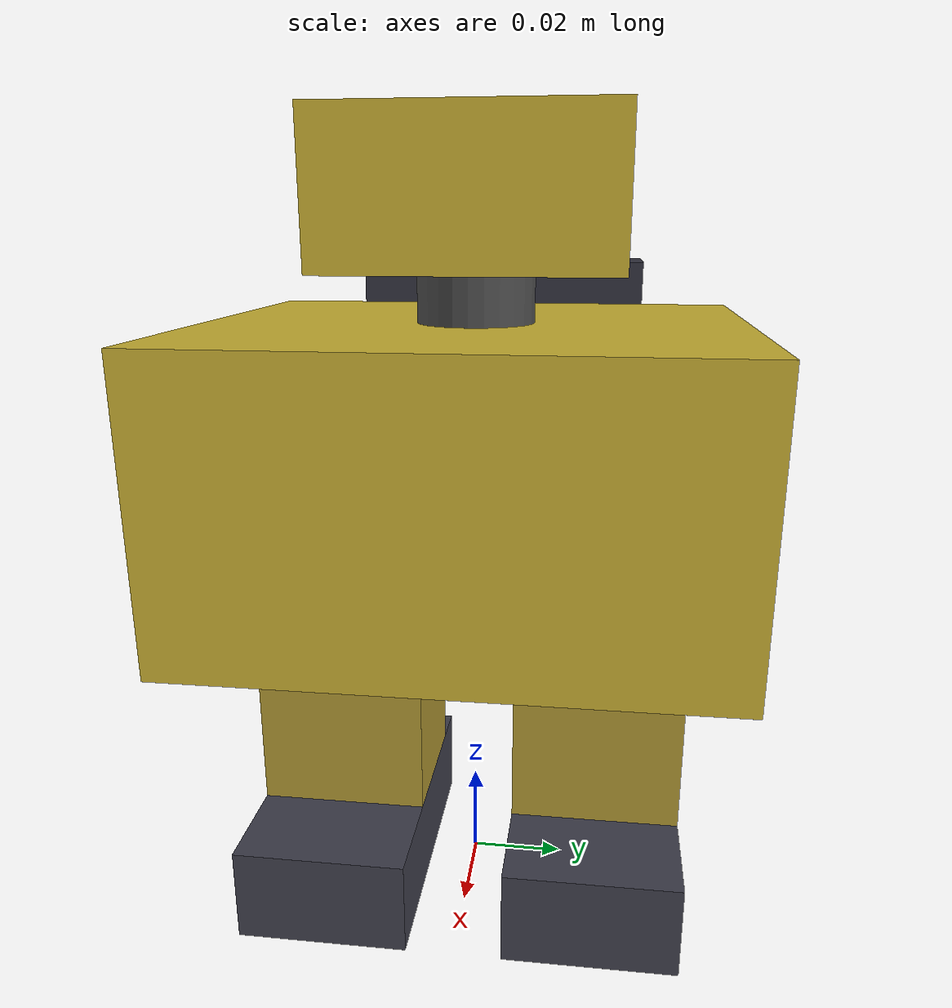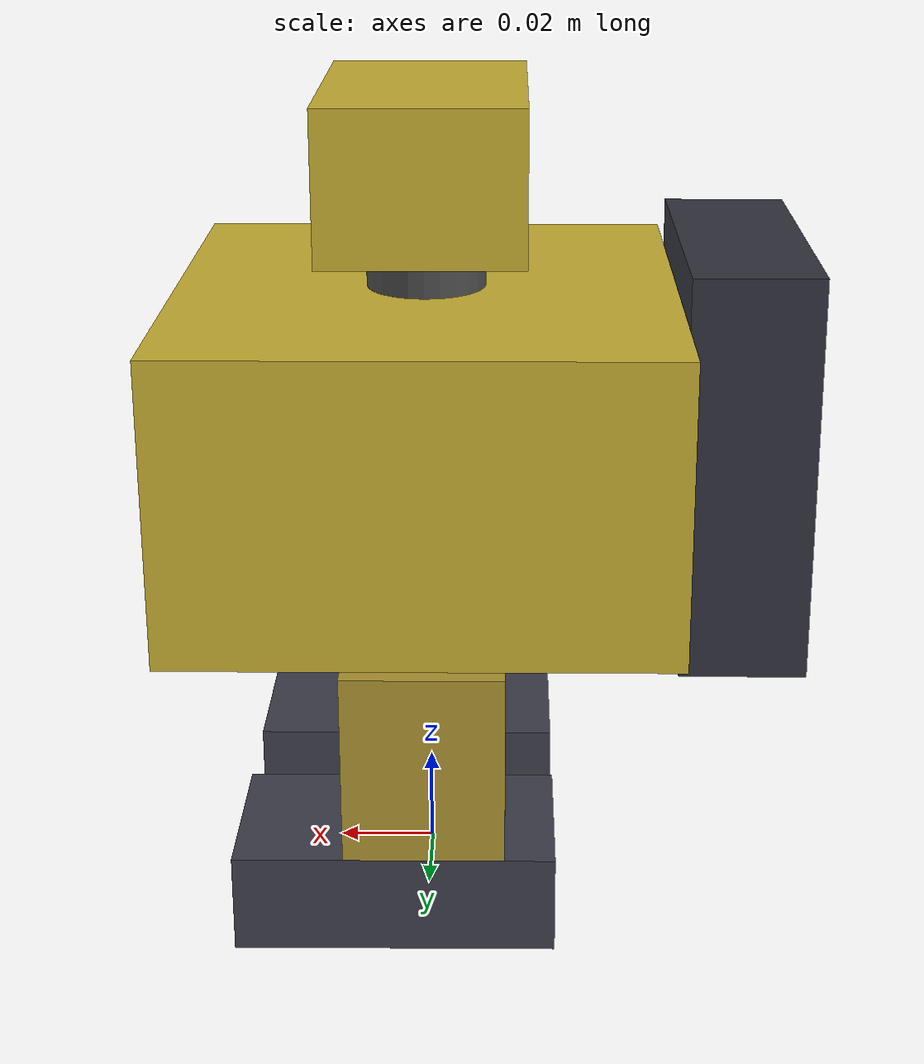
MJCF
<?xml version="1.0" ?>
<mujoco model="pu_robot">
  <compiler angle="radian" autolimits="true"/>

  <default>
    <default class="pu">
      <joint damping="0.02" frictionloss="0.012" armature="0.0015"/>
      <geom solimp="0.9 0.95 0.001" solref="0.002 1" friction="0.6 0.02 0.002" rgba="0.8 0.7 0.2 1"/>
      <default class="visual"><geom contype="0" conaffinity="0" group="2"/></default>
      <default class="collision"><geom group="3"/></default>
      <default class="servo">
        <position kp="0.12" dampratio="1" forcerange="-0.147 0.147"/>
      </default>
    </default>
  </default>

  <worldbody>
    <body name="trunk_base" pos="0 0 0.095" childclass="pu">
      <freejoint name="trunk_base_freejoint"/>
      <inertial pos="-0.005 0 0.004" mass="0.150" diaginertia="0.00022 0.00025 0.00011"/>
      <geom type="box" size="0.050 0.055 0.030" class="visual"/>
      <geom type="box" size="0.0125 0.035 0.040" pos="-0.0625 0 0" mass="0.020" class="visual" rgba="0.2 0.2 0.25 1"/>
      <geom type="box" size="0.050 0.055 0.030" class="collision" name="trunk_collision" mass="0"/>
      <site name="imu" pos="0 0 0" size="0.005"/>

      <body name="head_yaw" pos="0 0 0.030">
        <joint name="head_yaw" type="hinge" axis="0 0 1" range="-1.5 1.5"/>
        <geom type="cylinder" size="0.012 0.006" pos="0 0 0.005" mass="0.008" class="visual" rgba="0.3 0.3 0.3 1"/>
        <body name="head_pitch" pos="0 0 0.014">
          <joint name="head_pitch" type="hinge" axis="0 1 0" range="0 1.4"/>
          <geom type="box" size="0.020 0.030 0.015" pos="0 0 0.011" mass="0.037" class="visual"/>
        </body>
      </body>

      <body name="left_leg" pos="0 0.028 -0.037">
        <joint name="left_leg_stride" type="hinge" axis="0 1 0" range="-0.79 0.79"/>
        <geom type="box" size="0.016 0.018 0.020" pos="0 0 -0.019" mass="0.036" class="visual" rgba="0.7 0.6 0.2 1"/>
        <geom type="box" size="0.016 0.018 0.020" pos="0 0 -0.019" class="collision" name="left_leg_collision" mass="0"/>
        <body name="left_foot" pos="0 0 -0.038">
          <joint name="left_foot_tilt" type="hinge" axis="0 1 0" range="-0.61 0.61"/>
          <geom type="box" size="0.032 0.018 0.010" pos="0.006 0 -0.010" mass="0.024" class="visual" rgba="0.25 0.25 0.3 1"/>
          <geom type="box" size="0.032 0.018 0.010" pos="0.006 0 -0.010" class="collision" name="left_foot_collision" mass="0" condim="3" priority="1" friction="1.0 0.05 0.002"/>
          <site name="left_foot" pos="0.006 0 -0.014" size="0.004"/>
        </body>
      </body>

      <body name="right_leg" pos="0 -0.028 -0.037">
        <joint name="right_leg_stride" type="hinge" axis="0 1 0" range="-0.79 0.79"/>
        <geom type="box" size="0.016 0.018 0.020" pos="0 0 -0.019" mass="0.036" class="visual" rgba="0.7 0.6 0.2 1"/>
        <geom type="box" size="0.016 0.018 0.020" pos="0 0 -0.019" class="collision" name="right_leg_collision" mass="0"/>
        <body name="right_foot" pos="0 0 -0.038">
          <joint name="right_foot_tilt" type="hinge" axis="0 1 0" range="-0.61 0.61"/>
          <geom type="box" size="0.032 0.018 0.010" pos="0.006 0 -0.010" mass="0.024" class="visual" rgba="0.25 0.25 0.3 1"/>
          <geom type="box" size="0.032 0.018 0.010" pos="0.006 0 -0.010" class="collision" name="right_foot_collision" mass="0" condim="3" priority="1" friction="1.0 0.05 0.002"/>
          <site name="right_foot" pos="0.006 0 -0.014" size="0.004"/>
        </body>
      </body>
    </body>
  </worldbody>

  <actuator>
    <position name="left_leg_stride_ctrl"  joint="left_leg_stride"  class="servo" ctrlrange="-0.79 0.79"/>
    <position name="left_foot_tilt_ctrl"   joint="left_foot_tilt"   class="servo" ctrlrange="-0.61 0.61"/>
    <position name="right_leg_stride_ctrl" joint="right_leg_stride" class="servo" ctrlrange="-0.79 0.79"/>
    <position name="right_foot_tilt_ctrl"  joint="right_foot_tilt"  class="servo" ctrlrange="-0.61 0.61"/>
    <position name="head_yaw_ctrl"         joint="head_yaw"         class="servo" ctrlrange="-1.5 1.5"/>
    <position name="head_pitch_ctrl"       joint="head_pitch"       class="servo" ctrlrange="0 1.4"/>
  </actuator>

  <sensor>
    <accelerometer site="imu" name="accel"/>
    <gyro site="imu" name="gyro"/>
    <framequat objtype="site" objname="imu" name="orientation"/>
    <subtreeangmom body="trunk_base" name="root_angmom"/>
  </sensor>
</mujoco>
